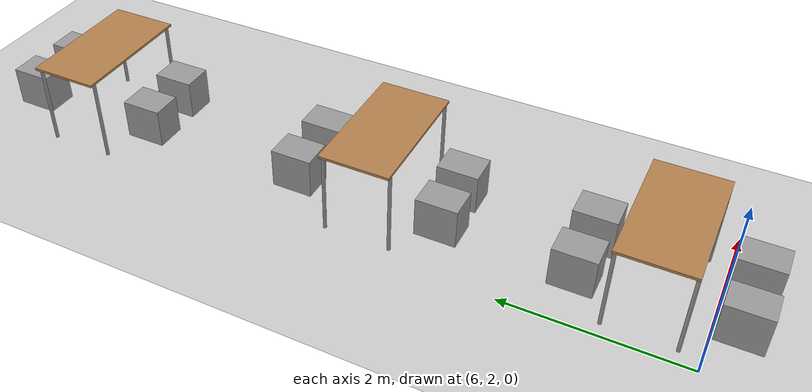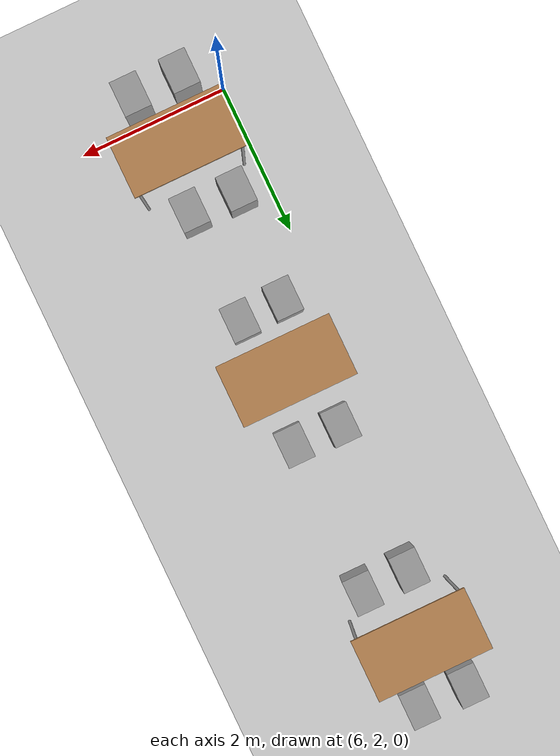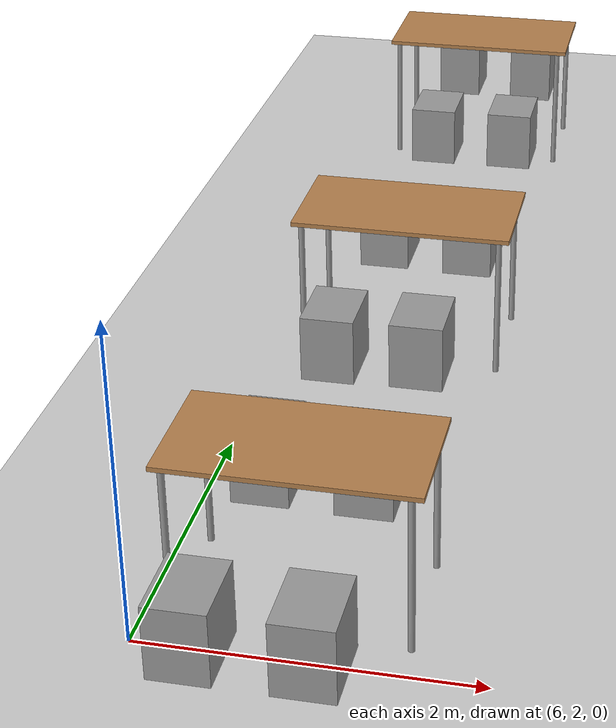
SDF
<sdf version="1.7">
 <world name="default">
  <light name="sun" type="directional">
   <pose>0 0 10 0 -0 0</pose>
   <diffuse>0.8 0.8 0.8 1</diffuse>
   <specular>0.2 0.2 0.2 1</specular>
   <attenuation>
    <range>1000</range>
    <constant>0.9</constant>
    <linear>0.01</linear>
    <quadratic>0.001</quadratic>
   </attenuation>
   <direction>-0.5 0.1 -0.9</direction>
   <spot><inner_angle>0</inner_angle><outer_angle>0</outer_angle><falloff>0</falloff></spot>
  </light>
  <model name="ground_plane">
   <static>1</static>
   <link name="link">
    <collision name="collision">
     <geometry><plane><normal>0 0 1</normal><size>100 100</size></plane></geometry>
     <surface><friction><ode><mu>100</mu><mu2>50</mu2></ode></friction></surface>
    </collision>
    <visual name="visual">
     <cast_shadows>0</cast_shadows>
     <geometry><plane><normal>0 0 1</normal><size>100 100</size></plane></geometry>
     <material>
      <script><uri>file://media/materials/scripts/gazebo.material</uri><name>Gazebo/Grey</name></script>
     </material>
    </visual>
   </link>
  </model>
  <gravity>0 0 -9.8</gravity>
  <magnetic_field>6e-06 2.3e-05 -4.2e-05</magnetic_field>
  <atmosphere type="adiabatic"/>
  <physics type="ode">
   <max_step_size>0.001</max_step_size>
   <real_time_factor>1</real_time_factor>
   <real_time_update_rate>1000</real_time_update_rate>
  </physics>
  <scene><ambient>0.4 0.4 0.4 1</ambient><background>0.7 0.7 0.7 1</background><shadows>1</shadows></scene>
  <audio><device>default</device></audio>
  <spherical_coordinates>
   <surface_model>EARTH_WGS84</surface_model>
   <latitude_deg>0</latitude_deg>
   <longitude_deg>0</longitude_deg>
   <elevation>0</elevation>
   <heading_deg>0</heading_deg>
  </spherical_coordinates>
  <model name="table">
   <static>1</static>
   <link name="link">
    <collision name="surface">
     <pose>0 0 1 0 -0 0</pose>
     <geometry><box><size>1.5 0.8 0.03</size></box></geometry>
     <surface><friction><ode><mu>0.6</mu><mu2>0.6</mu2></ode></friction></surface>
    </collision>
    <visual name="visual1">
     <pose>0 0 1 0 -0 0</pose>
     <geometry><box><size>1.5 0.8 0.03</size></box></geometry>
     <material>
      <script><uri>file://media/materials/scripts/gazebo.material</uri><name>Gazebo/Wood</name></script>
     </material>
    </visual>
    <collision name="front_left_leg">
     <pose>0.68 0.38 0.5 0 -0 0</pose>
     <geometry><cylinder><radius>0.02</radius><length>1</length></cylinder></geometry>
    </collision>
    <visual name="front_left_leg">
     <pose>0.68 0.38 0.5 0 -0 0</pose>
     <geometry><cylinder><radius>0.02</radius><length>1</length></cylinder></geometry>
     <material>
      <script><uri>file://media/materials/scripts/gazebo.material</uri><name>Gazebo/Grey</name></script>
     </material>
    </visual>
    <collision name="front_right_leg">
     <pose>0.68 -0.38 0.5 0 -0 0</pose>
     <geometry><cylinder><radius>0.02</radius><length>1</length></cylinder></geometry>
    </collision>
    <visual name="front_right_leg">
     <pose>0.68 -0.38 0.5 0 -0 0</pose>
     <geometry><cylinder><radius>0.02</radius><length>1</length></cylinder></geometry>
     <material>
      <script><uri>file://media/materials/scripts/gazebo.material</uri><name>Gazebo/Grey</name></script>
     </material>
    </visual>
    <collision name="back_right_leg">
     <pose>-0.68 -0.38 0.5 0 -0 0</pose>
     <geometry><cylinder><radius>0.02</radius><length>1</length></cylinder></geometry>
    </collision>
    <visual name="back_right_leg">
     <pose>-0.68 -0.38 0.5 0 -0 0</pose>
     <geometry><cylinder><radius>0.02</radius><length>1</length></cylinder></geometry>
     <material>
      <script><uri>file://media/materials/scripts/gazebo.material</uri><name>Gazebo/Grey</name></script>
     </material>
    </visual>
    <collision name="back_left_leg">
     <pose>-0.68 0.38 0.5 0 -0 0</pose>
     <geometry><cylinder><radius>0.02</radius><length>1</length></cylinder></geometry>
    </collision>
    <visual name="back_left_leg">
     <pose>-0.68 0.38 0.5 0 -0 0</pose>
     <geometry><cylinder><radius>0.02</radius><length>1</length></cylinder></geometry>
     <material>
      <script><uri>file://media/materials/scripts/gazebo.material</uri><name>Gazebo/Grey</name></script>
     </material>
    </visual>
   </link>
   <pose>6.79887 9.28383 0 0 -0 0</pose>
  </model>
  <model name="table_clone">
   <static>1</static>
   <link name="link">
    <collision name="surface">
     <pose>0 0 1 0 -0 0</pose>
     <geometry><box><size>1.5 0.8 0.03</size></box></geometry>
     <surface><friction><ode><mu>0.6</mu><mu2>0.6</mu2></ode></friction></surface>
    </collision>
    <visual name="visual1">
     <pose>0 0 1 0 -0 0</pose>
     <geometry><box><size>1.5 0.8 0.03</size></box></geometry>
     <material>
      <script><uri>file://media/materials/scripts/gazebo.material</uri><name>Gazebo/Wood</name></script>
     </material>
    </visual>
    <collision name="front_left_leg">
     <pose>0.68 0.38 0.5 0 -0 0</pose>
     <geometry><cylinder><radius>0.02</radius><length>1</length></cylinder></geometry>
    </collision>
    <visual name="front_left_leg">
     <pose>0.68 0.38 0.5 0 -0 0</pose>
     <geometry><cylinder><radius>0.02</radius><length>1</length></cylinder></geometry>
     <material>
      <script><uri>file://media/materials/scripts/gazebo.material</uri><name>Gazebo/Grey</name></script>
     </material>
    </visual>
    <collision name="front_right_leg">
     <pose>0.68 -0.38 0.5 0 -0 0</pose>
     <geometry><cylinder><radius>0.02</radius><length>1</length></cylinder></geometry>
    </collision>
    <visual name="front_right_leg">
     <pose>0.68 -0.38 0.5 0 -0 0</pose>
     <geometry><cylinder><radius>0.02</radius><length>1</length></cylinder></geometry>
     <material>
      <script><uri>file://media/materials/scripts/gazebo.material</uri><name>Gazebo/Grey</name></script>
     </material>
    </visual>
    <collision name="back_right_leg">
     <pose>-0.68 -0.38 0.5 0 -0 0</pose>
     <geometry><cylinder><radius>0.02</radius><length>1</length></cylinder></geometry>
    </collision>
    <visual name="back_right_leg">
     <pose>-0.68 -0.38 0.5 0 -0 0</pose>
     <geometry><cylinder><radius>0.02</radius><length>1</length></cylinder></geometry>
     <material>
      <script><uri>file://media/materials/scripts/gazebo.material</uri><name>Gazebo/Grey</name></script>
     </material>
    </visual>
    <collision name="back_left_leg">
     <pose>-0.68 0.38 0.5 0 -0 0</pose>
     <geometry><cylinder><radius>0.02</radius><length>1</length></cylinder></geometry>
    </collision>
    <visual name="back_left_leg">
     <pose>-0.68 0.38 0.5 0 -0 0</pose>
     <geometry><cylinder><radius>0.02</radius><length>1</length></cylinder></geometry>
     <material>
      <script><uri>file://media/materials/scripts/gazebo.material</uri><name>Gazebo/Grey</name></script>
     </material>
    </visual>
   </link>
   <pose>6.84864 5.63274 0 0 -0 0</pose>
  </model>
  <model name="table_clone_0">
   <static>1</static>
   <link name="link">
    <collision name="surface">
     <pose>0 0 1 0 -0 0</pose>
     <geometry><box><size>1.5 0.8 0.03</size></box></geometry>
     <surface><friction><ode><mu>0.6</mu><mu2>0.6</mu2></ode></friction></surface>
    </collision>
    <visual name="visual1">
     <pose>0 0 1 0 -0 0</pose>
     <geometry><box><size>1.5 0.8 0.03</size></box></geometry>
     <material>
      <script><uri>file://media/materials/scripts/gazebo.material</uri><name>Gazebo/Wood</name></script>
     </material>
    </visual>
    <collision name="front_left_leg">
     <pose>0.68 0.38 0.5 0 -0 0</pose>
     <geometry><cylinder><radius>0.02</radius><length>1</length></cylinder></geometry>
    </collision>
    <visual name="front_left_leg">
     <pose>0.68 0.38 0.5 0 -0 0</pose>
     <geometry><cylinder><radius>0.02</radius><length>1</length></cylinder></geometry>
     <material>
      <script><uri>file://media/materials/scripts/gazebo.material</uri><name>Gazebo/Grey</name></script>
     </material>
    </visual>
    <collision name="front_right_leg">
     <pose>0.68 -0.38 0.5 0 -0 0</pose>
     <geometry><cylinder><radius>0.02</radius><length>1</length></cylinder></geometry>
    </collision>
    <visual name="front_right_leg">
     <pose>0.68 -0.38 0.5 0 -0 0</pose>
     <geometry><cylinder><radius>0.02</radius><length>1</length></cylinder></geometry>
     <material>
      <script><uri>file://media/materials/scripts/gazebo.material</uri><name>Gazebo/Grey</name></script>
     </material>
    </visual>
    <collision name="back_right_leg">
     <pose>-0.68 -0.38 0.5 0 -0 0</pose>
     <geometry><cylinder><radius>0.02</radius><length>1</length></cylinder></geometry>
    </collision>
    <visual name="back_right_leg">
     <pose>-0.68 -0.38 0.5 0 -0 0</pose>
     <geometry><cylinder><radius>0.02</radius><length>1</length></cylinder></geometry>
     <material>
      <script><uri>file://media/materials/scripts/gazebo.material</uri><name>Gazebo/Grey</name></script>
     </material>
    </visual>
    <collision name="back_left_leg">
     <pose>-0.68 0.38 0.5 0 -0 0</pose>
     <geometry><cylinder><radius>0.02</radius><length>1</length></cylinder></geometry>
    </collision>
    <visual name="back_left_leg">
     <pose>-0.68 0.38 0.5 0 -0 0</pose>
     <geometry><cylinder><radius>0.02</radius><length>1</length></cylinder></geometry>
     <material>
      <script><uri>file://media/materials/scripts/gazebo.material</uri><name>Gazebo/Grey</name></script>
     </material>
    </visual>
   </link>
   <pose>6.84864 2.60257 0 0 -0 0</pose>
  </model>
  <model name="unit_box">
   <link name="link">
    <inertial>
     <mass>0.0776369</mass>
     <inertia>
      <ixx>0.00280834</ixx>
      <ixy>0</ixy>
      <ixz>0</ixz>
      <iyy>0.00221296</iyy>
      <iyz>0</iyz>
      <izz>0.00225137</izz>
     </inertia>
    </inertial>
    <visual name="visual">
     <geometry><box><size>0.357742 0.469047 0.462675</size></box></geometry>
     <material>
      <script><name>Gazebo/Grey</name><uri>file://media/materials/scripts/gazebo.material</uri></script>
      <shader type="pixel"><normal_map>__default__</normal_map></shader>
     </material>
    </visual>
    <collision name="collision">
     <geometry><box><size>0.357742 0.469047 0.462675</size></box></geometry>
     <surface>
      <friction>
       <ode><mu>1</mu><mu2>1</mu2><fdir1>0 0 0</fdir1><slip1>0</slip1><slip2>0</slip2></ode>
       <torsional>
        <coefficient>1</coefficient>
        <patch_radius>0</patch_radius>
        <surface_radius>0</surface_radius>
        <use_patch_radius>1</use_patch_radius>
        <ode><slip>0</slip></ode>
       </torsional>
      </friction>
      <bounce><restitution_coefficient>0</restitution_coefficient><threshold>1e+06</threshold></bounce>
      <contact>
       <collide_without_contact>0</collide_without_contact>
       <collide_without_contact_bitmask>1</collide_without_contact_bitmask>
       <collide_bitmask>1</collide_bitmask>
       <ode>
        <soft_cfm>0</soft_cfm>
        <soft_erp>0.2</soft_erp>
        <kp>1e+13</kp>
        <kd>1</kd>
        <max_vel>0.01</max_vel>
        <min_depth>0</min_depth>
       </ode>
       <bullet>
        <split_impulse>1</split_impulse>
        <split_impulse_penetration_threshold>-0.01</split_impulse_penetration_threshold>
        <soft_cfm>0</soft_cfm>
        <soft_erp>0.2</soft_erp>
        <kp>1e+13</kp>
        <kd>1</kd>
       </bullet>
      </contact>
     </surface>
    </collision>
   </link>
   <static>0</static>
   <pose>6.53185 8.49665 0.421137 -0 -0 -0</pose>
  </model>
  <model name="unit_box_clone">
   <link name="link">
    <inertial>
     <mass>0.0776369</mass>
     <inertia>
      <ixx>0.00280834</ixx>
      <ixy>0</ixy>
      <ixz>0</ixz>
      <iyy>0.00221296</iyy>
      <iyz>0</iyz>
      <izz>0.00225137</izz>
     </inertia>
    </inertial>
    <visual name="visual">
     <geometry><box><size>0.357742 0.469047 0.462675</size></box></geometry>
     <material>
      <script><name>Gazebo/Grey</name><uri>file://media/materials/scripts/gazebo.material</uri></script>
      <shader type="pixel"><normal_map>__default__</normal_map></shader>
     </material>
    </visual>
    <collision name="collision">
     <geometry><box><size>0.357742 0.469047 0.462675</size></box></geometry>
     <surface>
      <friction>
       <ode><mu>1</mu><mu2>1</mu2><fdir1>0 0 0</fdir1><slip1>0</slip1><slip2>0</slip2></ode>
       <torsional>
        <coefficient>1</coefficient>
        <patch_radius>0</patch_radius>
        <surface_radius>0</surface_radius>
        <use_patch_radius>1</use_patch_radius>
        <ode><slip>0</slip></ode>
       </torsional>
      </friction>
      <bounce><restitution_coefficient>0</restitution_coefficient><threshold>1e+06</threshold></bounce>
      <contact>
       <collide_without_contact>0</collide_without_contact>
       <collide_without_contact_bitmask>1</collide_without_contact_bitmask>
       <collide_bitmask>1</collide_bitmask>
       <ode>
        <soft_cfm>0</soft_cfm>
        <soft_erp>0.2</soft_erp>
        <kp>1e+13</kp>
        <kd>1</kd>
        <max_vel>0.01</max_vel>
        <min_depth>0</min_depth>
       </ode>
       <bullet>
        <split_impulse>1</split_impulse>
        <split_impulse_penetration_threshold>-0.01</split_impulse_penetration_threshold>
        <soft_cfm>0</soft_cfm>
        <soft_erp>0.2</soft_erp>
        <kp>1e+13</kp>
        <kd>1</kd>
       </bullet>
      </contact>
     </surface>
    </collision>
   </link>
   <static>0</static>
   <pose>7.1662 8.50889 0.421137 -0 -0 -0</pose>
  </model>
  <model name="unit_box_clone_0">
   <link name="link">
    <inertial>
     <mass>0.0776369</mass>
     <inertia>
      <ixx>0.00280834</ixx>
      <ixy>0</ixy>
      <ixz>0</ixz>
      <iyy>0.00221296</iyy>
      <iyz>0</iyz>
      <izz>0.00225137</izz>
     </inertia>
    </inertial>
    <visual name="visual">
     <geometry><box><size>0.357742 0.469047 0.462675</size></box></geometry>
     <material>
      <script><name>Gazebo/Grey</name><uri>file://media/materials/scripts/gazebo.material</uri></script>
      <shader type="pixel"><normal_map>__default__</normal_map></shader>
     </material>
    </visual>
    <collision name="collision">
     <geometry><box><size>0.357742 0.469047 0.462675</size></box></geometry>
     <surface>
      <friction>
       <ode><mu>1</mu><mu2>1</mu2><fdir1>0 0 0</fdir1><slip1>0</slip1><slip2>0</slip2></ode>
       <torsional>
        <coefficient>1</coefficient>
        <patch_radius>0</patch_radius>
        <surface_radius>0</surface_radius>
        <use_patch_radius>1</use_patch_radius>
        <ode><slip>0</slip></ode>
       </torsional>
      </friction>
      <bounce><restitution_coefficient>0</restitution_coefficient><threshold>1e+06</threshold></bounce>
      <contact>
       <collide_without_contact>0</collide_without_contact>
       <collide_without_contact_bitmask>1</collide_without_contact_bitmask>
       <collide_bitmask>1</collide_bitmask>
       <ode>
        <soft_cfm>0</soft_cfm>
        <soft_erp>0.2</soft_erp>
        <kp>1e+13</kp>
        <kd>1</kd>
        <max_vel>0.01</max_vel>
        <min_depth>0</min_depth>
       </ode>
       <bullet>
        <split_impulse>1</split_impulse>
        <split_impulse_penetration_threshold>-0.01</split_impulse_penetration_threshold>
        <soft_cfm>0</soft_cfm>
        <soft_erp>0.2</soft_erp>
        <kp>1e+13</kp>
        <kd>1</kd>
       </bullet>
      </contact>
     </surface>
    </collision>
   </link>
   <static>0</static>
   <pose>7.13941 10.0698 0.421137 -0 -0 -0</pose>
  </model>
  <model name="unit_box_clone_1">
   <link name="link">
    <inertial>
     <mass>0.0776369</mass>
     <inertia>
      <ixx>0.00280834</ixx>
      <ixy>0</ixy>
      <ixz>0</ixz>
      <iyy>0.00221296</iyy>
      <iyz>0</iyz>
      <izz>0.00225137</izz>
     </inertia>
    </inertial>
    <visual name="visual">
     <geometry><box><size>0.357742 0.469047 0.462675</size></box></geometry>
     <material>
      <script><name>Gazebo/Grey</name><uri>file://media/materials/scripts/gazebo.material</uri></script>
      <shader type="pixel"><normal_map>__default__</normal_map></shader>
     </material>
    </visual>
    <collision name="collision">
     <geometry><box><size>0.357742 0.469047 0.462675</size></box></geometry>
     <surface>
      <friction>
       <ode><mu>1</mu><mu2>1</mu2><fdir1>0 0 0</fdir1><slip1>0</slip1><slip2>0</slip2></ode>
       <torsional>
        <coefficient>1</coefficient>
        <patch_radius>0</patch_radius>
        <surface_radius>0</surface_radius>
        <use_patch_radius>1</use_patch_radius>
        <ode><slip>0</slip></ode>
       </torsional>
      </friction>
      <bounce><restitution_coefficient>0</restitution_coefficient><threshold>1e+06</threshold></bounce>
      <contact>
       <collide_without_contact>0</collide_without_contact>
       <collide_without_contact_bitmask>1</collide_without_contact_bitmask>
       <collide_bitmask>1</collide_bitmask>
       <ode>
        <soft_cfm>0</soft_cfm>
        <soft_erp>0.2</soft_erp>
        <kp>1e+13</kp>
        <kd>1</kd>
        <max_vel>0.01</max_vel>
        <min_depth>0</min_depth>
       </ode>
       <bullet>
        <split_impulse>1</split_impulse>
        <split_impulse_penetration_threshold>-0.01</split_impulse_penetration_threshold>
        <soft_cfm>0</soft_cfm>
        <soft_erp>0.2</soft_erp>
        <kp>1e+13</kp>
        <kd>1</kd>
       </bullet>
      </contact>
     </surface>
    </collision>
   </link>
   <static>0</static>
   <pose>6.48836 10.0875 0.421137 -0 -0 -0</pose>
  </model>
  <model name="unit_box_clone_2">
   <link name="link">
    <inertial>
     <mass>0.0776369</mass>
     <inertia>
      <ixx>0.00280834</ixx>
      <ixy>0</ixy>
      <ixz>0</ixz>
      <iyy>0.00221296</iyy>
      <iyz>0</iyz>
      <izz>0.00225137</izz>
     </inertia>
    </inertial>
    <visual name="visual">
     <geometry><box><size>0.357742 0.469047 0.462675</size></box></geometry>
     <material>
      <script><name>Gazebo/Grey</name><uri>file://media/materials/scripts/gazebo.material</uri></script>
      <shader type="pixel"><normal_map>__default__</normal_map></shader>
     </material>
    </visual>
    <collision name="collision">
     <geometry><box><size>0.357742 0.469047 0.462675</size></box></geometry>
     <surface>
      <friction>
       <ode><mu>1</mu><mu2>1</mu2><fdir1>0 0 0</fdir1><slip1>0</slip1><slip2>0</slip2></ode>
       <torsional>
        <coefficient>1</coefficient>
        <patch_radius>0</patch_radius>
        <surface_radius>0</surface_radius>
        <use_patch_radius>1</use_patch_radius>
        <ode><slip>0</slip></ode>
       </torsional>
      </friction>
      <bounce><restitution_coefficient>0</restitution_coefficient><threshold>1e+06</threshold></bounce>
      <contact>
       <collide_without_contact>0</collide_without_contact>
       <collide_without_contact_bitmask>1</collide_without_contact_bitmask>
       <collide_bitmask>1</collide_bitmask>
       <ode>
        <soft_cfm>0</soft_cfm>
        <soft_erp>0.2</soft_erp>
        <kp>1e+13</kp>
        <kd>1</kd>
        <max_vel>0.01</max_vel>
        <min_depth>0</min_depth>
       </ode>
       <bullet>
        <split_impulse>1</split_impulse>
        <split_impulse_penetration_threshold>-0.01</split_impulse_penetration_threshold>
        <soft_cfm>0</soft_cfm>
        <soft_erp>0.2</soft_erp>
        <kp>1e+13</kp>
        <kd>1</kd>
       </bullet>
      </contact>
     </surface>
    </collision>
   </link>
   <static>0</static>
   <pose>7.14836 6.50214 0.421137 -0 -0 -0</pose>
  </model>
  <model name="unit_box_clone_3">
   <link name="link">
    <inertial>
     <mass>0.0776369</mass>
     <inertia>
      <ixx>0.00280834</ixx>
      <ixy>0</ixy>
      <ixz>0</ixz>
      <iyy>0.00221296</iyy>
      <iyz>0</iyz>
      <izz>0.00225137</izz>
     </inertia>
    </inertial>
    <visual name="visual">
     <geometry><box><size>0.357742 0.469047 0.462675</size></box></geometry>
     <material>
      <script><name>Gazebo/Grey</name><uri>file://media/materials/scripts/gazebo.material</uri></script>
      <shader type="pixel"><normal_map>__default__</normal_map></shader>
     </material>
    </visual>
    <collision name="collision">
     <geometry><box><size>0.357742 0.469047 0.462675</size></box></geometry>
     <surface>
      <friction>
       <ode><mu>1</mu><mu2>1</mu2><fdir1>0 0 0</fdir1><slip1>0</slip1><slip2>0</slip2></ode>
       <torsional>
        <coefficient>1</coefficient>
        <patch_radius>0</patch_radius>
        <surface_radius>0</surface_radius>
        <use_patch_radius>1</use_patch_radius>
        <ode><slip>0</slip></ode>
       </torsional>
      </friction>
      <bounce><restitution_coefficient>0</restitution_coefficient><threshold>1e+06</threshold></bounce>
      <contact>
       <collide_without_contact>0</collide_without_contact>
       <collide_without_contact_bitmask>1</collide_without_contact_bitmask>
       <collide_bitmask>1</collide_bitmask>
       <ode>
        <soft_cfm>0</soft_cfm>
        <soft_erp>0.2</soft_erp>
        <kp>1e+13</kp>
        <kd>1</kd>
        <max_vel>0.01</max_vel>
        <min_depth>0</min_depth>
       </ode>
       <bullet>
        <split_impulse>1</split_impulse>
        <split_impulse_penetration_threshold>-0.01</split_impulse_penetration_threshold>
        <soft_cfm>0</soft_cfm>
        <soft_erp>0.2</soft_erp>
        <kp>1e+13</kp>
        <kd>1</kd>
       </bullet>
      </contact>
     </surface>
    </collision>
   </link>
   <static>0</static>
   <pose>6.52403 6.5199 0.421137 -0 -0 -0</pose>
  </model>
  <model name="unit_box_clone_4">
   <link name="link">
    <inertial>
     <mass>0.0776369</mass>
     <inertia>
      <ixx>0.00280834</ixx>
      <ixy>0</ixy>
      <ixz>0</ixz>
      <iyy>0.00221296</iyy>
      <iyz>0</iyz>
      <izz>0.00225137</izz>
     </inertia>
    </inertial>
    <visual name="visual">
     <geometry><box><size>0.357742 0.469047 0.462675</size></box></geometry>
     <material>
      <script><name>Gazebo/Grey</name><uri>file://media/materials/scripts/gazebo.material</uri></script>
      <shader type="pixel"><normal_map>__default__</normal_map></shader>
     </material>
    </visual>
    <collision name="collision">
     <geometry><box><size>0.357742 0.469047 0.462675</size></box></geometry>
     <surface>
      <friction>
       <ode><mu>1</mu><mu2>1</mu2><fdir1>0 0 0</fdir1><slip1>0</slip1><slip2>0</slip2></ode>
       <torsional>
        <coefficient>1</coefficient>
        <patch_radius>0</patch_radius>
        <surface_radius>0</surface_radius>
        <use_patch_radius>1</use_patch_radius>
        <ode><slip>0</slip></ode>
       </torsional>
      </friction>
      <bounce><restitution_coefficient>0</restitution_coefficient><threshold>1e+06</threshold></bounce>
      <contact>
       <collide_without_contact>0</collide_without_contact>
       <collide_without_contact_bitmask>1</collide_without_contact_bitmask>
       <collide_bitmask>1</collide_bitmask>
       <ode>
        <soft_cfm>0</soft_cfm>
        <soft_erp>0.2</soft_erp>
        <kp>1e+13</kp>
        <kd>1</kd>
        <max_vel>0.01</max_vel>
        <min_depth>0</min_depth>
       </ode>
       <bullet>
        <split_impulse>1</split_impulse>
        <split_impulse_penetration_threshold>-0.01</split_impulse_penetration_threshold>
        <soft_cfm>0</soft_cfm>
        <soft_erp>0.2</soft_erp>
        <kp>1e+13</kp>
        <kd>1</kd>
       </bullet>
      </contact>
     </surface>
    </collision>
   </link>
   <static>0</static>
   <pose>7.08962 4.82801 0.421137 -0 -0 -0</pose>
  </model>
  <model name="unit_box_clone_5">
   <link name="link">
    <inertial>
     <mass>0.0776369</mass>
     <inertia>
      <ixx>0.00280834</ixx>
      <ixy>0</ixy>
      <ixz>0</ixz>
      <iyy>0.00221296</iyy>
      <iyz>0</iyz>
      <izz>0.00225137</izz>
     </inertia>
    </inertial>
    <visual name="visual">
     <geometry><box><size>0.357742 0.469047 0.462675</size></box></geometry>
     <material>
      <script><name>Gazebo/Grey</name><uri>file://media/materials/scripts/gazebo.material</uri></script>
      <shader type="pixel"><normal_map>__default__</normal_map></shader>
     </material>
    </visual>
    <collision name="collision">
     <geometry><box><size>0.357742 0.469047 0.462675</size></box></geometry>
     <surface>
      <friction>
       <ode><mu>1</mu><mu2>1</mu2><fdir1>0 0 0</fdir1><slip1>0</slip1><slip2>0</slip2></ode>
       <torsional>
        <coefficient>1</coefficient>
        <patch_radius>0</patch_radius>
        <surface_radius>0</surface_radius>
        <use_patch_radius>1</use_patch_radius>
        <ode><slip>0</slip></ode>
       </torsional>
      </friction>
      <bounce><restitution_coefficient>0</restitution_coefficient><threshold>1e+06</threshold></bounce>
      <contact>
       <collide_without_contact>0</collide_without_contact>
       <collide_without_contact_bitmask>1</collide_without_contact_bitmask>
       <collide_bitmask>1</collide_bitmask>
       <ode>
        <soft_cfm>0</soft_cfm>
        <soft_erp>0.2</soft_erp>
        <kp>1e+13</kp>
        <kd>1</kd>
        <max_vel>0.01</max_vel>
        <min_depth>0</min_depth>
       </ode>
       <bullet>
        <split_impulse>1</split_impulse>
        <split_impulse_penetration_threshold>-0.01</split_impulse_penetration_threshold>
        <soft_cfm>0</soft_cfm>
        <soft_erp>0.2</soft_erp>
        <kp>1e+13</kp>
        <kd>1</kd>
       </bullet>
      </contact>
     </surface>
    </collision>
   </link>
   <static>0</static>
   <pose>6.49811 4.80762 0.421137 -0 -0 -0</pose>
  </model>
  <model name="unit_box_clone_6">
   <link name="link">
    <inertial>
     <mass>0.0776369</mass>
     <inertia>
      <ixx>0.00280834</ixx>
      <ixy>0</ixy>
      <ixz>0</ixz>
      <iyy>0.00221296</iyy>
      <iyz>0</iyz>
      <izz>0.00225137</izz>
     </inertia>
    </inertial>
    <visual name="visual">
     <geometry><box><size>0.357742 0.469047 0.462675</size></box></geometry>
     <material>
      <script><name>Gazebo/Grey</name><uri>file://media/materials/scripts/gazebo.material</uri></script>
      <shader type="pixel"><normal_map>__default__</normal_map></shader>
     </material>
    </visual>
    <collision name="collision">
     <geometry><box><size>0.357742 0.469047 0.462675</size></box></geometry>
     <surface>
      <friction>
       <ode><mu>1</mu><mu2>1</mu2><fdir1>0 0 0</fdir1><slip1>0</slip1><slip2>0</slip2></ode>
       <torsional>
        <coefficient>1</coefficient>
        <patch_radius>0</patch_radius>
        <surface_radius>0</surface_radius>
        <use_patch_radius>1</use_patch_radius>
        <ode><slip>0</slip></ode>
       </torsional>
      </friction>
      <bounce><restitution_coefficient>0</restitution_coefficient><threshold>1e+06</threshold></bounce>
      <contact>
       <collide_without_contact>0</collide_without_contact>
       <collide_without_contact_bitmask>1</collide_without_contact_bitmask>
       <collide_bitmask>1</collide_bitmask>
       <ode>
        <soft_cfm>0</soft_cfm>
        <soft_erp>0.2</soft_erp>
        <kp>1e+13</kp>
        <kd>1</kd>
        <max_vel>0.01</max_vel>
        <min_depth>0</min_depth>
       </ode>
       <bullet>
        <split_impulse>1</split_impulse>
        <split_impulse_penetration_threshold>-0.01</split_impulse_penetration_threshold>
        <soft_cfm>0</soft_cfm>
        <soft_erp>0.2</soft_erp>
        <kp>1e+13</kp>
        <kd>1</kd>
       </bullet>
      </contact>
     </surface>
    </collision>
   </link>
   <static>0</static>
   <pose>7.06923 3.33896 0.421137 -0 -0 -0</pose>
  </model>
  <model name="unit_box_clone_7">
   <link name="link">
    <inertial>
     <mass>0.0776369</mass>
     <inertia>
      <ixx>0.00280834</ixx>
      <ixy>0</ixy>
      <ixz>0</ixz>
      <iyy>0.00221296</iyy>
      <iyz>0</iyz>
      <izz>0.00225137</izz>
     </inertia>
    </inertial>
    <visual name="visual">
     <geometry><box><size>0.357742 0.469047 0.462675</size></box></geometry>
     <material>
      <script><name>Gazebo/Grey</name><uri>file://media/materials/scripts/gazebo.material</uri></script>
      <shader type="pixel"><normal_map>__default__</normal_map></shader>
     </material>
    </visual>
    <collision name="collision">
     <geometry><box><size>0.357742 0.469047 0.462675</size></box></geometry>
     <surface>
      <friction>
       <ode><mu>1</mu><mu2>1</mu2><fdir1>0 0 0</fdir1><slip1>0</slip1><slip2>0</slip2></ode>
       <torsional>
        <coefficient>1</coefficient>
        <patch_radius>0</patch_radius>
        <surface_radius>0</surface_radius>
        <use_patch_radius>1</use_patch_radius>
        <ode><slip>0</slip></ode>
       </torsional>
      </friction>
      <bounce><restitution_coefficient>0</restitution_coefficient><threshold>1e+06</threshold></bounce>
      <contact>
       <collide_without_contact>0</collide_without_contact>
       <collide_without_contact_bitmask>1</collide_without_contact_bitmask>
       <collide_bitmask>1</collide_bitmask>
       <ode>
        <soft_cfm>0</soft_cfm>
        <soft_erp>0.2</soft_erp>
        <kp>1e+13</kp>
        <kd>1</kd>
        <max_vel>0.01</max_vel>
        <min_depth>0</min_depth>
       </ode>
       <bullet>
        <split_impulse>1</split_impulse>
        <split_impulse_penetration_threshold>-0.01</split_impulse_penetration_threshold>
        <soft_cfm>0</soft_cfm>
        <soft_erp>0.2</soft_erp>
        <kp>1e+13</kp>
        <kd>1</kd>
       </bullet>
      </contact>
     </surface>
    </collision>
   </link>
   <static>0</static>
   <pose>6.43688 3.34914 0.421137 -0 -0 -0</pose>
  </model>
  <model name="unit_box_clone_8">
   <link name="link">
    <inertial>
     <mass>0.0776369</mass>
     <inertia>
      <ixx>0.00280834</ixx>
      <ixy>0</ixy>
      <ixz>0</ixz>
      <iyy>0.00221296</iyy>
      <iyz>0</iyz>
      <izz>0.00225137</izz>
     </inertia>
    </inertial>
    <visual name="visual">
     <geometry><box><size>0.357742 0.469047 0.462675</size></box></geometry>
     <material>
      <script><name>Gazebo/Grey</name><uri>file://media/materials/scripts/gazebo.material</uri></script>
      <shader type="pixel"><normal_map>__default__</normal_map></shader>
     </material>
    </visual>
    <collision name="collision">
     <geometry><box><size>0.357742 0.469047 0.462675</size></box></geometry>
     <surface>
      <friction>
       <ode><mu>1</mu><mu2>1</mu2><fdir1>0 0 0</fdir1><slip1>0</slip1><slip2>0</slip2></ode>
       <torsional>
        <coefficient>1</coefficient>
        <patch_radius>0</patch_radius>
        <surface_radius>0</surface_radius>
        <use_patch_radius>1</use_patch_radius>
        <ode><slip>0</slip></ode>
       </torsional>
      </friction>
      <bounce><restitution_coefficient>0</restitution_coefficient><threshold>1e+06</threshold></bounce>
      <contact>
       <collide_without_contact>0</collide_without_contact>
       <collide_without_contact_bitmask>1</collide_without_contact_bitmask>
       <collide_bitmask>1</collide_bitmask>
       <ode>
        <soft_cfm>0</soft_cfm>
        <soft_erp>0.2</soft_erp>
        <kp>1e+13</kp>
        <kd>1</kd>
        <max_vel>0.01</max_vel>
        <min_depth>0</min_depth>
       </ode>
       <bullet>
        <split_impulse>1</split_impulse>
        <split_impulse_penetration_threshold>-0.01</split_impulse_penetration_threshold>
        <soft_cfm>0</soft_cfm>
        <soft_erp>0.2</soft_erp>
        <kp>1e+13</kp>
        <kd>1</kd>
       </bullet>
      </contact>
     </surface>
    </collision>
   </link>
   <static>0</static>
   <pose>7.11002 1.73768 0.421137 -0 -0 -0</pose>
  </model>
  <model name="unit_box_clone_9">
   <link name="link">
    <inertial>
     <mass>0.0776369</mass>
     <inertia>
      <ixx>0.00280834</ixx>
      <ixy>0</ixy>
      <ixz>0</ixz>
      <iyy>0.00221296</iyy>
      <iyz>0</iyz>
      <izz>0.00225137</izz>
     </inertia>
    </inertial>
    <visual name="visual">
     <geometry><box><size>0.357742 0.469047 0.462675</size></box></geometry>
     <material>
      <script><name>Gazebo/Grey</name><uri>file://media/materials/scripts/gazebo.material</uri></script>
      <shader type="pixel"><normal_map>__default__</normal_map></shader>
     </material>
    </visual>
    <collision name="collision">
     <geometry><box><size>0.357742 0.469047 0.462675</size></box></geometry>
     <surface>
      <friction>
       <ode><mu>1</mu><mu2>1</mu2><fdir1>0 0 0</fdir1><slip1>0</slip1><slip2>0</slip2></ode>
       <torsional>
        <coefficient>1</coefficient>
        <patch_radius>0</patch_radius>
        <surface_radius>0</surface_radius>
        <use_patch_radius>1</use_patch_radius>
        <ode><slip>0</slip></ode>
       </torsional>
      </friction>
      <bounce><restitution_coefficient>0</restitution_coefficient><threshold>1e+06</threshold></bounce>
      <contact>
       <collide_without_contact>0</collide_without_contact>
       <collide_without_contact_bitmask>1</collide_without_contact_bitmask>
       <collide_bitmask>1</collide_bitmask>
       <ode>
        <soft_cfm>0</soft_cfm>
        <soft_erp>0.2</soft_erp>
        <kp>1e+13</kp>
        <kd>1</kd>
        <max_vel>0.01</max_vel>
        <min_depth>0</min_depth>
       </ode>
       <bullet>
        <split_impulse>1</split_impulse>
        <split_impulse_penetration_threshold>-0.01</split_impulse_penetration_threshold>
        <soft_cfm>0</soft_cfm>
        <soft_erp>0.2</soft_erp>
        <kp>1e+13</kp>
        <kd>1</kd>
       </bullet>
      </contact>
     </surface>
    </collision>
   </link>
   <static>0</static>
   <pose>6.44712 1.73768 0.421137 -0 -0 -0</pose>
  </model>
  <light name="user_point_light_0" type="point">
   <pose>6.96962 2.49688 1 0 -0 0</pose>
   <diffuse>0.5 0.5 0.5 1</diffuse>
   <specular>0.1 0.1 0.1 1</specular>
   <attenuation>
    <range>20</range>
    <constant>0.5</constant>
    <linear>0.01</linear>
    <quadratic>0.001</quadratic>
   </attenuation>
   <cast_shadows>0</cast_shadows>
   <direction>0 0 -1</direction>
  </light>
  <light name="user_point_light_1" type="point">
   <pose>6.90696 5.60811 1 0 -0 0</pose>
   <diffuse>0.5 0.5 0.5 1</diffuse>
   <specular>0.1 0.1 0.1 1</specular>
   <attenuation>
    <range>20</range>
    <constant>0.5</constant>
    <linear>0.01</linear>
    <quadratic>0.001</quadratic>
   </attenuation>
   <cast_shadows>0</cast_shadows>
   <direction>0 0 -1</direction>
  </light>
  <light name="user_point_light_2" type="point">
   <pose>6.7959 9.2298 1 0 -0 0</pose>
   <diffuse>0.5 0.5 0.5 1</diffuse>
   <specular>0.1 0.1 0.1 1</specular>
   <attenuation>
    <range>20</range>
    <constant>0.5</constant>
    <linear>0.01</linear>
    <quadratic>0.001</quadratic>
   </attenuation>
   <cast_shadows>0</cast_shadows>
   <direction>0 0 -1</direction>
  </light>
  <light name="user_point_light_3" type="point">
   <pose>2.90639 21.9151 1 0 -0 0</pose>
   <diffuse>0.5 0.5 0.5 1</diffuse>
   <specular>0.1 0.1 0.1 1</specular>
   <attenuation>
    <range>20</range>
    <constant>0.5</constant>
    <linear>0.01</linear>
    <quadratic>0.001</quadratic>
   </attenuation>
   <cast_shadows>0</cast_shadows>
   <direction>0 0 -1</direction>
  </light>
  <light name="user_point_light_4" type="point">
   <pose>4.29571 17.8417 1 0 -0 0</pose>
   <diffuse>0.5 0.5 0.5 1</diffuse>
   <specular>0.1 0.1 0.1 1</specular>
   <attenuation>
    <range>20</range>
    <constant>0.5</constant>
    <linear>0.01</linear>
    <quadratic>0.001</quadratic>
   </attenuation>
   <cast_shadows>0</cast_shadows>
   <direction>0 0 -1</direction>
  </light>
  <light name="user_point_light_5" type="point">
   <pose>0.391884 8.66211 1 0 -0 0</pose>
   <diffuse>0.5 0.5 0.5 1</diffuse>
   <specular>0.1 0.1 0.1 1</specular>
   <attenuation>
    <range>20</range>
    <constant>0.5</constant>
    <linear>0.01</linear>
    <quadratic>0.001</quadratic>
   </attenuation>
   <cast_shadows>0</cast_shadows>
   <direction>0 0 -1</direction>
  </light>
 </world>
</sdf>
